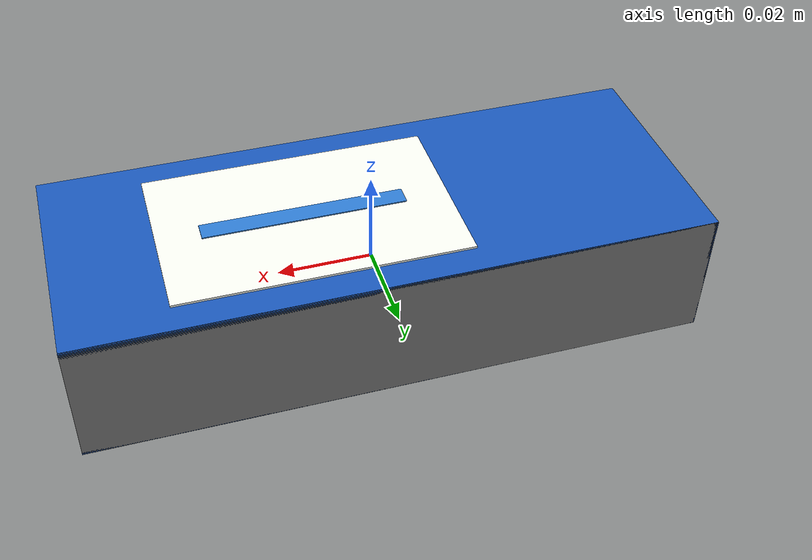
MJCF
<mujoco model="vla82_vla82_046">
  <compiler angle="radian"/>
  <asset>
    <texture name="source_texture" type="2d" file="source_texture.png"/>
    <material name="source_material" texture="source_texture" rgba="1 1 1 1"/>
  </asset>
  <default>
    <default class="visual"><geom contype="0" conaffinity="0" group="1"/></default>
    <default class="collision"><geom contype="1" conaffinity="1" group="0" density="300" friction="0.65 0.006 0.0002" solref="0.02 1" solimp="0.9 0.95 0.001"/></default>
    <default class="region"><geom contype="0" conaffinity="0" group="1" rgba="0 1 0 0" mass="0"/></default>
  </default>
  <worldbody><body><body name="object">
    <geom name="folder_pages" class="visual" type="box" pos="0.003 0 0" size="0.058000 0.021000 0.012000" rgba="0.94 0.91 0.82 1"/>
    <geom name="folder_cover_top" class="visual" type="box" pos="0 0 0.013000" size="0.065000 0.025000 0.001" rgba="0.10 0.34 0.72 1"/>
    <geom name="folder_cover_bottom" class="visual" type="box" pos="0 0 -0.013000" size="0.065000 0.025000 0.001" rgba="0.07 0.25 0.58 1"/>
    <geom name="folder_spine" class="visual" type="box" pos="-0.060000 0 0" size="0.005 0.025000 0.014000" rgba="0.05 0.20 0.50 1"/>
    <geom name="folder_label" class="visual" type="box" pos="0.014 0 0.014250" size="0.030 0.019000 0.00025" rgba="0.96 0.97 0.94 1"/>
    <geom name="folder_label_bar" class="visual" type="box" pos="0.014 0 0.014550" size="0.021 0.002 0.00020" rgba="0.18 0.48 0.82 1"/>
    <geom name="collision" class="collision" type="box" size="0.065000 0.025000 0.014000"/>
    <geom name="reg_bbox" class="region" type="box" pos="0 0 0" size="0.065000 0.025000 0.014000"/>
  </body></body></worldbody>
  <actuator/>
</mujoco>
